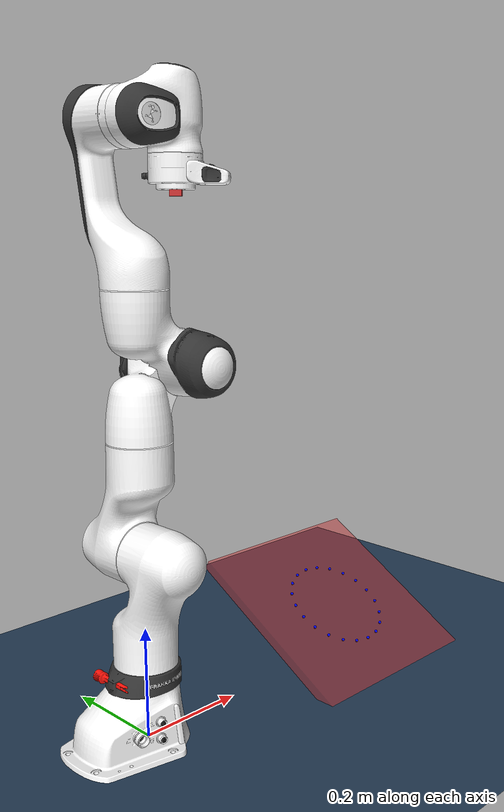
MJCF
<?xml version='1.0' encoding='utf-8'?>
<mujoco model="fr3 scene">
  <include file="fr3_no_joint_friction.xml" />

  <statistic center="0.2 0 0.4" extent=".8" />

  <visual>
    <headlight diffuse="0.6 0.6 0.6" ambient="0.3 0.3 0.3" specular="0 0 0" />
    <rgba haze="0.15 0.25 0.35 1" />
    <global azimuth="120" elevation="-20" />
  </visual>

  <asset>
    <texture type="skybox" builtin="gradient" rgb1="0.3 0.5 0.7" rgb2="0 0 0" width="512" height="3072" />
    <texture type="2d" name="groundplane" builtin="checker" mark="edge" rgb1="0.2 0.3 0.4" rgb2="0.1 0.2 0.3" markrgb="0.8 0.8 0.8" width="300" height="300" />
    <material name="groundplane" texture="groundplane" texuniform="true" texrepeat="5 5" reflectance="0.2" />
  </asset>

  <worldbody>
    <light pos="0 0 1.5" dir="0 0 -1" directional="true" />
    <geom name="floor" size="0 0 0.05" type="plane" material="groundplane" />
  <body name="slope_body" pos="0.5038 0.0108 0.0857" euler="0.5235987755982988 0.0 0.0">
      <geom name="slope_geom" type="box" size="0.20 0.20 0.01" rgba="0.8 0.2 0.2 0.5" contype="1" conaffinity="1" />
    </body><site name="circle_0" pos="0.6038 0.0058 0.0944" size="0.003" rgba="0 0 1 1" />
<site name="circle_1" pos="0.5989 0.0326 0.1098" size="0.003" rgba="0 0 1 1" />
<site name="circle_2" pos="0.5847 0.0567 0.1237" size="0.003" rgba="0 0 1 1" />
<site name="circle_3" pos="0.5626 0.0759 0.1348" size="0.003" rgba="0 0 1 1" />
<site name="circle_4" pos="0.5347 0.0882 0.1419" size="0.003" rgba="0 0 1 1" />
<site name="circle_5" pos="0.5038 0.0924 0.1444" size="0.003" rgba="0 0 1 1" />
<site name="circle_6" pos="0.4729 0.0882 0.1419" size="0.003" rgba="0 0 1 1" />
<site name="circle_7" pos="0.4450 0.0759 0.1348" size="0.003" rgba="0 0 1 1" />
<site name="circle_8" pos="0.4229 0.0567 0.1237" size="0.003" rgba="0 0 1 1" />
<site name="circle_9" pos="0.4087 0.0326 0.1098" size="0.003" rgba="0 0 1 1" />
<site name="circle_10" pos="0.4038 0.0058 0.0944" size="0.003" rgba="0 0 1 1" />
<site name="circle_11" pos="0.4087 -0.0210 0.0789" size="0.003" rgba="0 0 1 1" />
<site name="circle_12" pos="0.4229 -0.0451 0.0650" size="0.003" rgba="0 0 1 1" />
<site name="circle_13" pos="0.4450 -0.0643 0.0539" size="0.003" rgba="0 0 1 1" />
<site name="circle_14" pos="0.4729 -0.0766 0.0468" size="0.003" rgba="0 0 1 1" />
<site name="circle_15" pos="0.5038 -0.0808 0.0444" size="0.003" rgba="0 0 1 1" />
<site name="circle_16" pos="0.5347 -0.0766 0.0468" size="0.003" rgba="0 0 1 1" />
<site name="circle_17" pos="0.5626 -0.0643 0.0539" size="0.003" rgba="0 0 1 1" />
<site name="circle_18" pos="0.5847 -0.0451 0.0650" size="0.003" rgba="0 0 1 1" />
<site name="circle_19" pos="0.5989 -0.0210 0.0789" size="0.003" rgba="0 0 1 1" />
</worldbody>
</mujoco>

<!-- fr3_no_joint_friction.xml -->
<mujoco model="fr3">
  <compiler angle="radian" meshdir="assets"/>

  <option integrator="implicitfast"/>

  <default>
    <default class="fr3">
      <!-- Overwritten in joints 5, 6, and 7. -->
      <joint damping="0.21" armature="0.195" frictionloss="0"/>
      <position inheritrange="1"/>
      <default class="visual">
        <geom type="mesh" group="2" contype="0" conaffinity="0"/>
      </default>
      <default class="collision">
        <geom type="mesh" group="3" mass="0" density="0"/>
      </default>
      <site size="0.001" rgba="0.5 0.5 0.5 0.3" group="4"/>
    </default>
  </default>

  <asset>
    <material name="black" rgba=".2 .2 .2 1"/>
    <material name="white" rgba="1 1 1 1"/>
    <material name="red" rgba="1 0.072272 0.039546 1"/>
    <material name="gray" rgba="0.863156 0.863156 0.863157 1"/>
    <material name="button_green" rgba="0.102241 0.571125 0.102242 1"/>
    <material name="button_red" rgba="0.520996 0.008023 0.013702 1"/>
    <material name="button_blue" rgba="0.024157 0.445201 0.737911 1"/>

    <mesh file="link0_0.obj"/>
    <mesh file="link0_1.obj"/>
    <mesh file="link0_2.obj"/>
    <mesh file="link0_3.obj"/>
    <mesh file="link0_4.obj"/>
    <mesh file="link0_5.obj"/>
    <mesh file="link0_6.obj"/>
    <mesh file="link1.obj"/>
    <mesh file="link2.obj"/>
    <mesh file="link3_0.obj"/>
    <mesh file="link3_1.obj"/>
    <mesh file="link4_0.obj"/>
    <mesh file="link4_1.obj"/>
    <mesh file="link5_0.obj"/>
    <mesh file="link5_1.obj"/>
    <mesh file="link5_2.obj"/>
    <mesh file="link6_0.obj"/>
    <mesh file="link6_1.obj"/>
    <mesh file="link6_2.obj"/>
    <mesh file="link6_3.obj"/>
    <mesh file="link6_4.obj"/>
    <mesh file="link6_5.obj"/>
    <mesh file="link6_6.obj"/>
    <mesh file="link6_7.obj"/>
    <mesh file="link7_0.obj"/>
    <mesh file="link7_1.obj"/>
    <mesh file="link7_2.obj"/>
    <mesh file="link7_3.obj"/>

    <mesh name="link0_coll" file="link0.stl"/>
    <mesh name="link1_coll" file="link1.stl"/>
    <mesh name="link2_coll" file="link2.stl"/>
    <mesh name="link3_coll" file="link3.stl"/>
    <mesh name="link4_coll" file="link4.stl"/>
    <mesh name="link5_coll" file="link5.stl"/>
    <mesh name="link6_coll" file="link6.stl"/>
    <mesh name="link7_coll" file="link7.stl"/>
  </asset>

  <worldbody>
    <body name="base" childclass="fr3">
      <body name="fr3_link0">
        <geom mesh="link0_0" material="black" class="visual"/>
        <geom mesh="link0_1" material="white" class="visual"/>
        <geom mesh="link0_2" material="white" class="visual"/>
        <geom mesh="link0_3" material="white" class="visual"/>
        <geom mesh="link0_4" material="white" class="visual"/>
        <geom mesh="link0_5" material="red" class="visual"/>
        <geom mesh="link0_6" material="black" class="visual"/>
        <geom name="fr3_link0_collision" mesh="link0_coll" class="collision"/>
        <body name="fr3_link1" pos="0 0 0.333">
          <inertial pos="4.128e-07 -0.0181251 -0.0386036" quat="0.998098 -0.0605364 0.00380499 0.0110109" mass="2.92747"
            diaginertia="0.0239286 0.0227246 0.00610634"/>
          <joint name="fr3_joint1" axis="0 0 1" range="-2.7437 2.7437" actuatorfrcrange="-87 87"/>
          <geom name="fr3_link1_collision" class="collision" mesh="link1_coll"/>
          <geom material="white" mesh="link1" class="visual"/>
          <body name="fr3_link2" quat="1 -1 0 0">
            <inertial pos="0.00318289 -0.0743222 0.00881461" quat="0.502599 0.584437 -0.465998 0.434366" mass="2.93554"
              diaginertia="0.0629567 0.0411924 0.0246371"/>
            <joint name="fr3_joint2" axis="0 0 1" range="-1.7837 1.7837" actuatorfrcrange="-87 87"/>
            <geom material="white" mesh="link2" class="visual"/>
            <geom name="fr3_link2_collision" class="collision" mesh="link2_coll"/>
            <body name="fr3_link3" pos="0 -0.316 0" quat="1 1 0 0">
              <inertial pos="0.0407016 -0.00482006 -0.0289731" quat="0.921025 -0.244161 0.155272 0.260745" mass="2.2449"
                diaginertia="0.0267409 0.0189869 0.0171587"/>
              <joint name="fr3_joint3" axis="0 0 1" range="-2.9007 2.9007" actuatorfrcrange="-87 87"/>
              <geom mesh="link3_0" material="white" class="visual"/>
              <geom mesh="link3_1" material="black" class="visual"/>
              <geom name="fr3_link3_collision" class="collision" mesh="link3_coll"/>
              <body name="fr3_link4" pos="0.0825 0 0" quat="1 1 0 0">
                <inertial pos="-0.0459101 0.0630493 -0.00851879" quat="0.438018 0.803311 0.00937812 0.403414"
                  mass="2.6156" diaginertia="0.05139 0.0372717 0.0160047"/>
                <joint name="fr3_joint4" axis="0 0 1" range="-3.0421 -0.1518" actuatorfrcrange="-87 87"/>
                <geom mesh="link4_0" material="white" class="visual"/>
                <geom mesh="link4_1" material="black" class="visual"/>
                <geom name="fr3_link4_collision" class="collision" mesh="link4_coll"/>
                <body name="fr3_link5" pos="-0.0825 0.384 0" quat="1 -1 0 0">
                  <inertial pos="-0.00160396 0.0292536 -0.0972966" quat="0.919031 0.125604 0.0751531 -0.366003"
                    mass="2.32712" diaginertia="0.0579335 0.0449144 0.0130634"/>
                  <joint name="fr3_joint5" axis="0 0 1" range="-2.8065 2.8065" actuatorfrcrange="-12 12"
                    armature="0.074" frictionloss="0"/>
                  <geom mesh="link5_0" material="white" class="visual"/>
                  <geom mesh="link5_1" material="white" class="visual"/>
                  <geom mesh="link5_2" material="black" class="visual"/>
                  <geom name="fr3_link5_collision" class="collision" mesh="link5_coll"/>
                  <body name="fr3_link6" quat="1 1 0 0">
                    <inertial pos="0.0597131 -0.0410295 -0.0101693" quat="0.621301 0.552665 0.510011 0.220081"
                      mass="1.81704" diaginertia="0.0175039 0.0161123 0.00193529"/>
                    <joint name="fr3_joint6" axis="0 0 1" range="0.5445 4.5169" actuatorfrcrange="-12 12"
                      armature="0.074" frictionloss="0"/>
                    <geom mesh="link6_0" material="button_green" class="visual"/>
                    <geom mesh="link6_1" material="white" class="visual"/>
                    <geom mesh="link6_2" material="white" class="visual"/>
                    <geom mesh="link6_3" material="gray" class="visual"/>
                    <geom mesh="link6_4" material="button_red" class="visual"/>
                    <geom mesh="link6_5" material="white" class="visual"/>
                    <geom mesh="link6_6" material="black" class="visual"/>
                    <geom mesh="link6_7" material="button_blue" class="visual"/>
                    <geom name="fr3_link6_collision" class="collision" mesh="link6_coll"/>
                    <body name="fr3_link7" pos="0.088 0 0" quat="1 1 0 0">
                      <inertial pos="0.00452258 0.00862619 -0.0161633" quat="0.727579 0.0978688 -0.24906 0.63168"
                        mass="0.627143" diaginertia="0.000223836 0.000223642 5.64132e-07"/>
                      <joint name="fr3_joint7" axis="0 0 1" range="-3.0159 3.0159" actuatorfrcrange="-12 12"
                        armature="0.074" frictionloss="0"/>
                      <geom mesh="link7_0" material="black" class="visual"/>
                      <geom mesh="link7_1" material="white" class="visual"/>
                      <geom mesh="link7_2" material="white" class="visual"/>
                      <geom mesh="link7_3" material="black" class="visual"/>
                      <geom name="fr3_link7_collision" class="collision" mesh="link7_coll"/>
                      <body name="attachment" pos="0 0 0.107" quat="0.3826834 0 0 0.9238795">
                        <geom name="attachment_visual" class="visual" type="box" size="0.01 0.01 0.01" rgba="0.8 0.2 0.2 1"/>
                        <geom name="attachment_collision" class="collision" type="sphere" size="0.01" rgba="0.8 0.2 0.2 1" priority="1" solimp="0.015 1 0.02" condim="6" friction="1 0.02 0.01" />
                        <site name="attachment_site" rgba="1 0 0 1" size="0.01" group="1" quat="0 0 0 1"/>
                      </body>
                    </body>
                  </body>
                </body>
              </body>
            </body>
          </body>
        </body>
      </body>
    </body>
  </worldbody>

  <actuator>
    <motor name="fr3_joint1" joint="fr3_joint1" ctrlrange="-320 320"/>
    <motor name="fr3_joint2" joint="fr3_joint2" ctrlrange="-320 320"/>
    <motor name="fr3_joint3" joint="fr3_joint3" ctrlrange="-176 176"/>
    <motor name="fr3_joint4" joint="fr3_joint4" ctrlrange="-176 176"/>
    <motor name="fr3_joint5" joint="fr3_joint5" ctrlrange="-110 110"/>
    <motor name="fr3_joint6" joint="fr3_joint6" ctrlrange="-40 40"/>
    <motor name="fr3_joint7" joint="fr3_joint7" ctrlrange="-40 40"/>
  </actuator>

  <contact>
    <exclude body1="fr3_link0" body2="fr3_link1"/>
  </contact>

  <keyframe>
    <key name="home" qpos="0 0 0 -1.57079 0 1.57079 -0.7853" ctrl="0 0 0 -1.57079 0 1.57079 -0.7853"/>
  </keyframe>
</mujoco>
